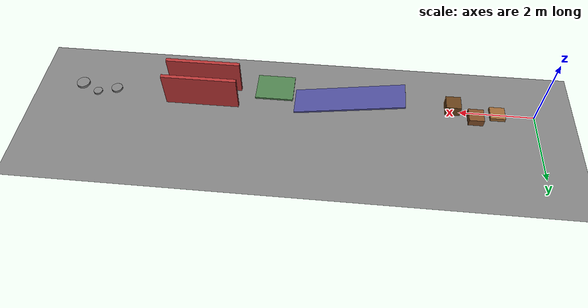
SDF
<?xml version="1.0"?>
<!--
Physical AI & Humanoid Robotics Textbook
Module 2, Chapter 6: Obstacle Course World
Description: Test environment with ramps, steps, and narrow passages
Usage: gz sim -r obstacle_world.sdf
-->
<sdf version="1.9">
  <world name="obstacle_world">

    <!-- ==================== Physics Configuration ==================== -->
    <physics name="1ms_dart_physics" type="dart">
      <max_step_size>0.001</max_step_size>
      <real_time_factor>1.0</real_time_factor>
      <dart>
        <collision_detector>fcl</collision_detector>
      </dart>
    </physics>

    <!-- ==================== Required Plugins ==================== -->
    <plugin filename="gz-sim-physics-system"
            name="gz::sim::systems::Physics"/>
    <plugin filename="gz-sim-scene-broadcaster-system"
            name="gz::sim::systems::SceneBroadcaster"/>
    <plugin filename="gz-sim-user-commands-system"
            name="gz::sim::systems::UserCommands"/>

    <!-- Environment -->
    <gravity>0 0 -9.81</gravity>

    <!-- ==================== Ground Plane ==================== -->
    <model name="ground_plane">
      <static>true</static>
      <link name="ground_link">
        <collision name="collision">
          <geometry>
            <plane><normal>0 0 1</normal><size>50 50</size></plane>
          </geometry>
          <surface>
            <friction>
              <ode><mu>0.9</mu><mu2>0.9</mu2></ode>
            </friction>
          </surface>
        </collision>
        <visual name="visual">
          <geometry>
            <plane><normal>0 0 1</normal><size>50 50</size></plane>
          </geometry>
          <material>
            <ambient>0.5 0.5 0.5 1</ambient>
          </material>
        </visual>
      </link>
    </model>

    <!-- ==================== Obstacle Course ==================== -->

    <!-- ===== Section 1: Stepping Stones (X = 1-3m) ===== -->
    <model name="step_1">
      <static>true</static>
      <pose>1.0 0 0.05 0 0 0</pose>
      <link name="link">
        <collision name="collision">
          <geometry><box><size>0.4 0.4 0.1</size></box></geometry>
          <surface>
            <friction><ode><mu>0.8</mu><mu2>0.8</mu2></ode></friction>
          </surface>
        </collision>
        <visual name="visual">
          <geometry><box><size>0.4 0.4 0.1</size></box></geometry>
          <material><ambient>0.6 0.4 0.2 1</ambient></material>
        </visual>
      </link>
    </model>

    <model name="step_2">
      <static>true</static>
      <pose>1.6 0.2 0.1 0 0 0</pose>
      <link name="link">
        <collision name="collision">
          <geometry><box><size>0.4 0.4 0.2</size></box></geometry>
          <surface>
            <friction><ode><mu>0.8</mu><mu2>0.8</mu2></ode></friction>
          </surface>
        </collision>
        <visual name="visual">
          <geometry><box><size>0.4 0.4 0.2</size></box></geometry>
          <material><ambient>0.5 0.3 0.15 1</ambient></material>
        </visual>
      </link>
    </model>

    <model name="step_3">
      <static>true</static>
      <pose>2.2 -0.1 0.15 0 0 0</pose>
      <link name="link">
        <collision name="collision">
          <geometry><box><size>0.4 0.4 0.3</size></box></geometry>
          <surface>
            <friction><ode><mu>0.8</mu><mu2>0.8</mu2></ode></friction>
          </surface>
        </collision>
        <visual name="visual">
          <geometry><box><size>0.4 0.4 0.3</size></box></geometry>
          <material><ambient>0.4 0.25 0.1 1</ambient></material>
        </visual>
      </link>
    </model>

    <!-- ===== Section 2: Ramp (X = 4-6m) ===== -->
    <!-- 10 degree incline ramp -->
    <model name="ramp_up">
      <static>true</static>
      <!-- Ramp positioned to start at ground level -->
      <pose>5.0 0 0.26 0 0.1745 0</pose> <!-- 10 degrees = 0.1745 rad -->
      <link name="link">
        <collision name="collision">
          <geometry><box><size>3.0 0.8 0.05</size></box></geometry>
          <surface>
            <friction><ode><mu>1.0</mu><mu2>1.0</mu2></ode></friction>
          </surface>
        </collision>
        <visual name="visual">
          <geometry><box><size>3.0 0.8 0.05</size></box></geometry>
          <material><ambient>0.3 0.3 0.6 1</ambient></material>
        </visual>
      </link>
    </model>

    <!-- Flat platform at top of ramp -->
    <model name="platform">
      <static>true</static>
      <pose>7.0 0 0.5 0 0 0</pose>
      <link name="link">
        <collision name="collision">
          <geometry><box><size>1.0 0.8 0.05</size></box></geometry>
          <surface>
            <friction><ode><mu>0.9</mu><mu2>0.9</mu2></ode></friction>
          </surface>
        </collision>
        <visual name="visual">
          <geometry><box><size>1.0 0.8 0.05</size></box></geometry>
          <material><ambient>0.3 0.5 0.3 1</ambient></material>
        </visual>
      </link>
    </model>

    <!-- ===== Section 3: Narrow Passage (X = 8-10m) ===== -->
    <model name="passage_wall_left">
      <static>true</static>
      <pose>9.0 0.3 0.5 0 0 0</pose>
      <link name="link">
        <collision name="collision">
          <geometry><box><size>2.0 0.1 1.0</size></box></geometry>
        </collision>
        <visual name="visual">
          <geometry><box><size>2.0 0.1 1.0</size></box></geometry>
          <material><ambient>0.7 0.2 0.2 1</ambient></material>
        </visual>
      </link>
    </model>

    <model name="passage_wall_right">
      <static>true</static>
      <pose>9.0 -0.3 0.5 0 0 0</pose>
      <link name="link">
        <collision name="collision">
          <geometry><box><size>2.0 0.1 1.0</size></box></geometry>
        </collision>
        <visual name="visual">
          <geometry><box><size>2.0 0.1 1.0</size></box></geometry>
          <material><ambient>0.7 0.2 0.2 1</ambient></material>
        </visual>
      </link>
    </model>

    <!-- ===== Section 4: Uneven Terrain (X = 11-14m) ===== -->
    <model name="bump_1">
      <static>true</static>
      <pose>11.5 0 0.03 0 0 0.3</pose>
      <link name="link">
        <collision name="collision">
          <geometry><cylinder><radius>0.15</radius><length>0.06</length></cylinder></geometry>
          <surface>
            <friction><ode><mu>0.7</mu><mu2>0.7</mu2></ode></friction>
          </surface>
        </collision>
        <visual name="visual">
          <geometry><cylinder><radius>0.15</radius><length>0.06</length></cylinder></geometry>
          <material><ambient>0.5 0.5 0.5 1</ambient></material>
        </visual>
      </link>
    </model>

    <model name="bump_2">
      <static>true</static>
      <pose>12.0 0.15 0.025 0 0 0.7</pose>
      <link name="link">
        <collision name="collision">
          <geometry><cylinder><radius>0.12</radius><length>0.05</length></cylinder></geometry>
          <surface>
            <friction><ode><mu>0.7</mu><mu2>0.7</mu2></ode></friction>
          </surface>
        </collision>
        <visual name="visual">
          <geometry><cylinder><radius>0.12</radius><length>0.05</length></cylinder></geometry>
          <material><ambient>0.5 0.5 0.5 1</ambient></material>
        </visual>
      </link>
    </model>

    <model name="bump_3">
      <static>true</static>
      <pose>12.5 -0.1 0.035 0 0 1.2</pose>
      <link name="link">
        <collision name="collision">
          <geometry><cylinder><radius>0.18</radius><length>0.07</length></cylinder></geometry>
          <surface>
            <friction><ode><mu>0.7</mu><mu2>0.7</mu2></ode></friction>
          </surface>
        </collision>
        <visual name="visual">
          <geometry><cylinder><radius>0.18</radius><length>0.07</length></cylinder></geometry>
          <material><ambient>0.5 0.5 0.5 1</ambient></material>
        </visual>
      </link>
    </model>

    <!-- ==================== Lighting ==================== -->
    <light type="directional" name="sun">
      <cast_shadows>true</cast_shadows>
      <pose>0 0 10 0 0 0</pose>
      <diffuse>0.9 0.9 0.9 1</diffuse>
      <specular>0.3 0.3 0.3 1</specular>
      <direction>-0.5 0.1 -0.9</direction>
    </light>

    <scene>
      <ambient>0.4 0.4 0.4 1</ambient>
      <background>0.7 0.8 0.9 1</background>
      <shadows>true</shadows>
    </scene>

  </world>
</sdf>
